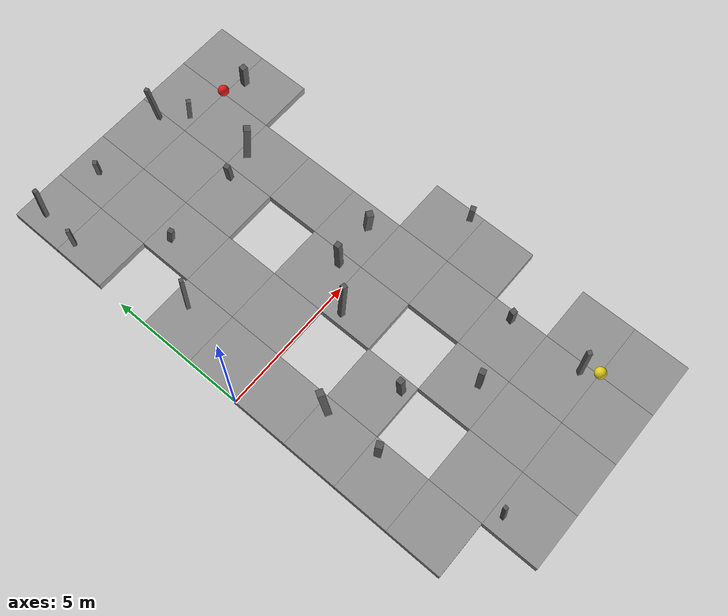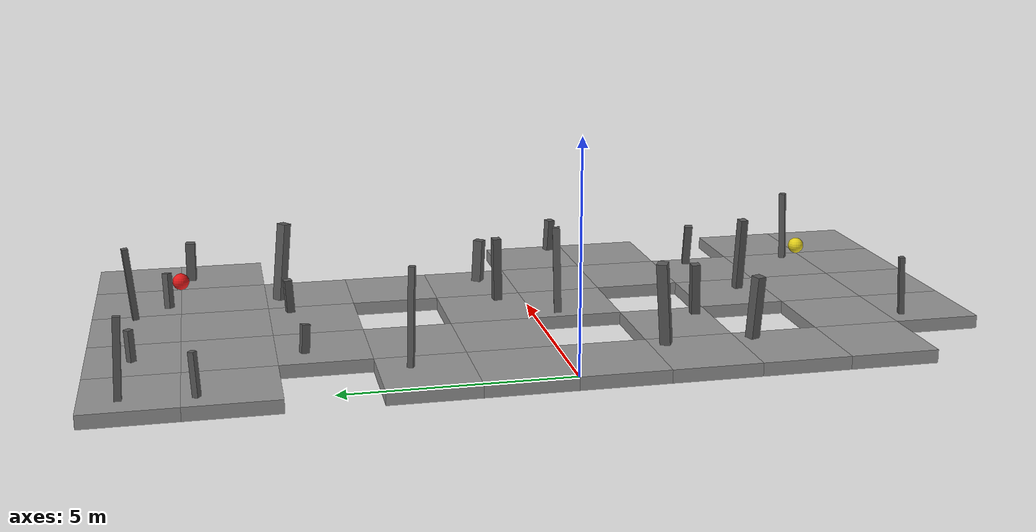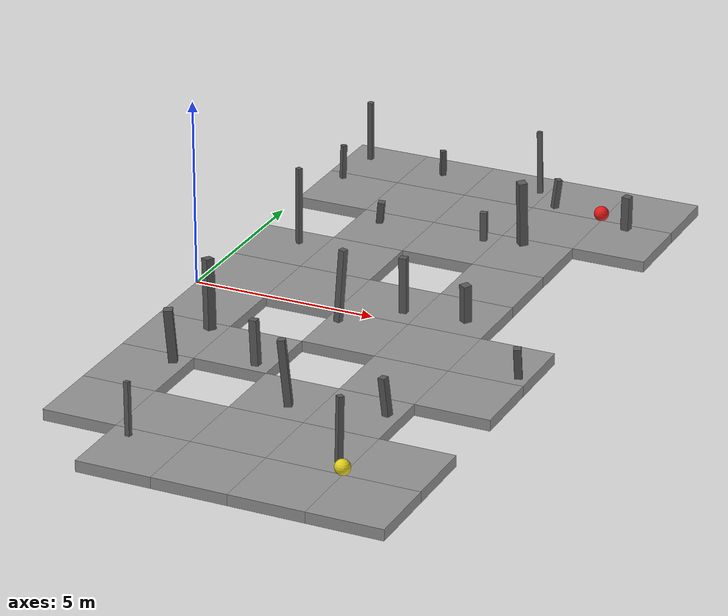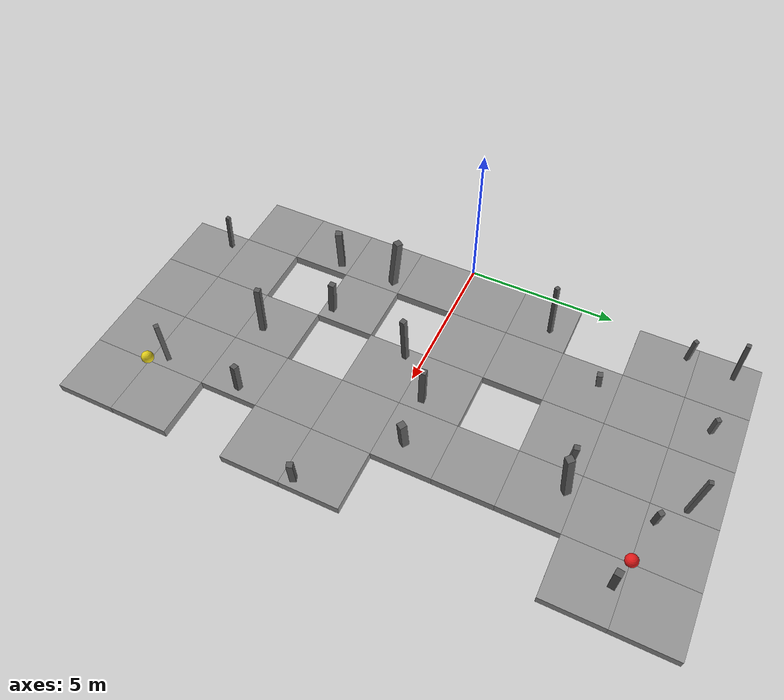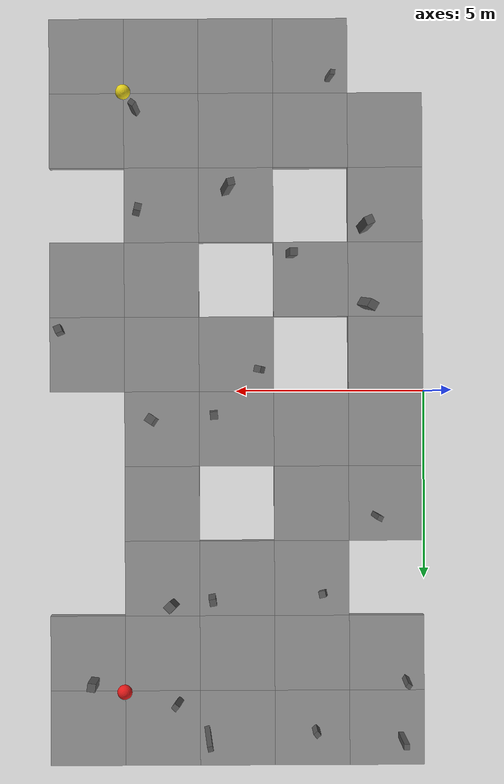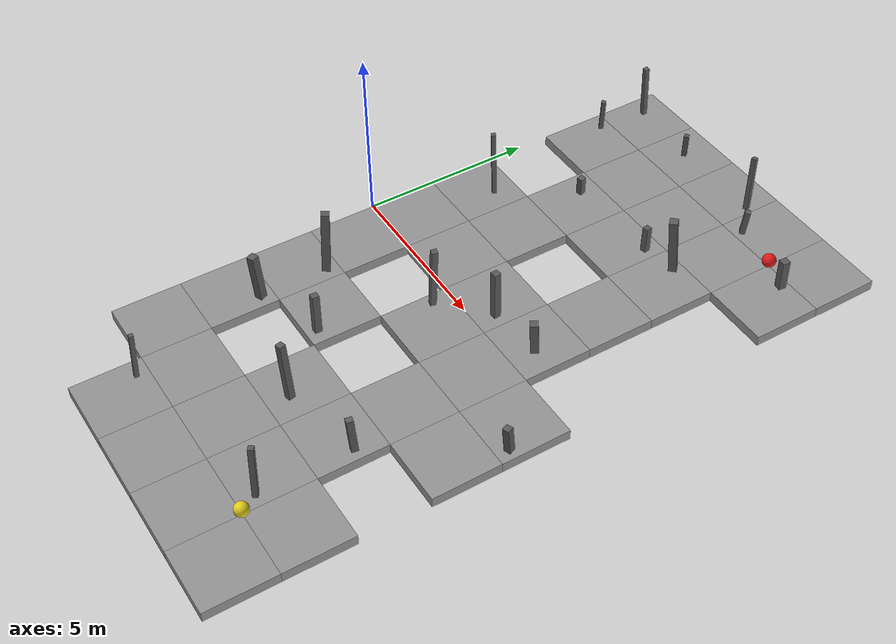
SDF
<sdf version="1.6">
 <world name="obstacle_course">
  <model name="obstacle_terrain">
   <static>true</static>
   <link name="tile_5_1">
    <pose>1.000 -7.000 -0.150 0 0 0</pose>
    <collision name="col">
     <geometry><box><size>2.00 2.00 0.30</size></box></geometry>
     <surface><friction><ode><mu>1.0</mu><mu2>1.0</mu2></ode></friction></surface>
    </collision>
    <visual name="vis">
     <geometry><box><size>2.00 2.00 0.30</size></box></geometry>
     <material>
      <ambient>0.58 0.58 0.58 1</ambient>
      <diffuse>0.58 0.58 0.58 1</diffuse>
      <specular>0 0 0 1</specular>
     </material>
    </visual>
   </link>
   <link name="tile_5_2">
    <pose>1.000 -5.000 -0.150 0 0 0</pose>
    <collision name="col">
     <geometry><box><size>2.00 2.00 0.30</size></box></geometry>
     <surface><friction><ode><mu>1.0</mu><mu2>1.0</mu2></ode></friction></surface>
    </collision>
    <visual name="vis">
     <geometry><box><size>2.00 2.00 0.30</size></box></geometry>
     <material>
      <ambient>0.58 0.58 0.58 1</ambient>
      <diffuse>0.58 0.58 0.58 1</diffuse>
      <specular>0 0 0 1</specular>
     </material>
    </visual>
   </link>
   <link name="tile_5_3">
    <pose>1.000 -3.000 -0.150 0 0 0</pose>
    <collision name="col">
     <geometry><box><size>2.00 2.00 0.30</size></box></geometry>
     <surface><friction><ode><mu>1.0</mu><mu2>1.0</mu2></ode></friction></surface>
    </collision>
    <visual name="vis">
     <geometry><box><size>2.00 2.00 0.30</size></box></geometry>
     <material>
      <ambient>0.58 0.58 0.58 1</ambient>
      <diffuse>0.58 0.58 0.58 1</diffuse>
      <specular>0 0 0 1</specular>
     </material>
    </visual>
   </link>
   <link name="tile_5_4">
    <pose>1.000 -1.000 -0.150 0 0 0</pose>
    <collision name="col">
     <geometry><box><size>2.00 2.00 0.30</size></box></geometry>
     <surface><friction><ode><mu>1.0</mu><mu2>1.0</mu2></ode></friction></surface>
    </collision>
    <visual name="vis">
     <geometry><box><size>2.00 2.00 0.30</size></box></geometry>
     <material>
      <ambient>0.58 0.58 0.58 1</ambient>
      <diffuse>0.58 0.58 0.58 1</diffuse>
      <specular>0 0 0 1</specular>
     </material>
    </visual>
   </link>
   <link name="tile_5_5">
    <pose>1.000 1.000 -0.150 0 0 0</pose>
    <collision name="col">
     <geometry><box><size>2.00 2.00 0.30</size></box></geometry>
     <surface><friction><ode><mu>1.0</mu><mu2>1.0</mu2></ode></friction></surface>
    </collision>
    <visual name="vis">
     <geometry><box><size>2.00 2.00 0.30</size></box></geometry>
     <material>
      <ambient>0.58 0.58 0.58 1</ambient>
      <diffuse>0.58 0.58 0.58 1</diffuse>
      <specular>0 0 0 1</specular>
     </material>
    </visual>
   </link>
   <link name="tile_5_6">
    <pose>1.000 3.000 -0.150 0 0 0</pose>
    <collision name="col">
     <geometry><box><size>2.00 2.00 0.30</size></box></geometry>
     <surface><friction><ode><mu>1.0</mu><mu2>1.0</mu2></ode></friction></surface>
    </collision>
    <visual name="vis">
     <geometry><box><size>2.00 2.00 0.30</size></box></geometry>
     <material>
      <ambient>0.58 0.58 0.58 1</ambient>
      <diffuse>0.58 0.58 0.58 1</diffuse>
      <specular>0 0 0 1</specular>
     </material>
    </visual>
   </link>
   <link name="tile_5_8">
    <pose>1.000 7.000 -0.150 0 0 0</pose>
    <collision name="col">
     <geometry><box><size>2.00 2.00 0.30</size></box></geometry>
     <surface><friction><ode><mu>1.0</mu><mu2>1.0</mu2></ode></friction></surface>
    </collision>
    <visual name="vis">
     <geometry><box><size>2.00 2.00 0.30</size></box></geometry>
     <material>
      <ambient>0.58 0.58 0.58 1</ambient>
      <diffuse>0.58 0.58 0.58 1</diffuse>
      <specular>0 0 0 1</specular>
     </material>
    </visual>
   </link>
   <link name="tile_5_9">
    <pose>1.000 9.000 -0.150 0 0 0</pose>
    <collision name="col">
     <geometry><box><size>2.00 2.00 0.30</size></box></geometry>
     <surface><friction><ode><mu>1.0</mu><mu2>1.0</mu2></ode></friction></surface>
    </collision>
    <visual name="vis">
     <geometry><box><size>2.00 2.00 0.30</size></box></geometry>
     <material>
      <ambient>0.58 0.58 0.58 1</ambient>
      <diffuse>0.58 0.58 0.58 1</diffuse>
      <specular>0 0 0 1</specular>
     </material>
    </visual>
   </link>
   <link name="tile_6_0">
    <pose>3.000 -9.000 -0.150 0 0 0</pose>
    <collision name="col">
     <geometry><box><size>2.00 2.00 0.30</size></box></geometry>
     <surface><friction><ode><mu>1.0</mu><mu2>1.0</mu2></ode></friction></surface>
    </collision>
    <visual name="vis">
     <geometry><box><size>2.00 2.00 0.30</size></box></geometry>
     <material>
      <ambient>0.58 0.58 0.58 1</ambient>
      <diffuse>0.58 0.58 0.58 1</diffuse>
      <specular>0 0 0 1</specular>
     </material>
    </visual>
   </link>
   <link name="tile_6_1">
    <pose>3.000 -7.000 -0.150 0 0 0</pose>
    <collision name="col">
     <geometry><box><size>2.00 2.00 0.30</size></box></geometry>
     <surface><friction><ode><mu>1.0</mu><mu2>1.0</mu2></ode></friction></surface>
    </collision>
    <visual name="vis">
     <geometry><box><size>2.00 2.00 0.30</size></box></geometry>
     <material>
      <ambient>0.58 0.58 0.58 1</ambient>
      <diffuse>0.58 0.58 0.58 1</diffuse>
      <specular>0 0 0 1</specular>
     </material>
    </visual>
   </link>
   <link name="tile_6_3">
    <pose>3.000 -3.000 -0.150 0 0 0</pose>
    <collision name="col">
     <geometry><box><size>2.00 2.00 0.30</size></box></geometry>
     <surface><friction><ode><mu>1.0</mu><mu2>1.0</mu2></ode></friction></surface>
    </collision>
    <visual name="vis">
     <geometry><box><size>2.00 2.00 0.30</size></box></geometry>
     <material>
      <ambient>0.58 0.58 0.58 1</ambient>
      <diffuse>0.58 0.58 0.58 1</diffuse>
      <specular>0 0 0 1</specular>
     </material>
    </visual>
   </link>
   <link name="tile_6_5">
    <pose>3.000 1.000 -0.150 0 0 0</pose>
    <collision name="col">
     <geometry><box><size>2.00 2.00 0.30</size></box></geometry>
     <surface><friction><ode><mu>1.0</mu><mu2>1.0</mu2></ode></friction></surface>
    </collision>
    <visual name="vis">
     <geometry><box><size>2.00 2.00 0.30</size></box></geometry>
     <material>
      <ambient>0.58 0.58 0.58 1</ambient>
      <diffuse>0.58 0.58 0.58 1</diffuse>
      <specular>0 0 0 1</specular>
     </material>
    </visual>
   </link>
   <link name="tile_6_6">
    <pose>3.000 3.000 -0.150 0 0 0</pose>
    <collision name="col">
     <geometry><box><size>2.00 2.00 0.30</size></box></geometry>
     <surface><friction><ode><mu>1.0</mu><mu2>1.0</mu2></ode></friction></surface>
    </collision>
    <visual name="vis">
     <geometry><box><size>2.00 2.00 0.30</size></box></geometry>
     <material>
      <ambient>0.58 0.58 0.58 1</ambient>
      <diffuse>0.58 0.58 0.58 1</diffuse>
      <specular>0 0 0 1</specular>
     </material>
    </visual>
   </link>
   <link name="tile_6_7">
    <pose>3.000 5.000 -0.150 0 0 0</pose>
    <collision name="col">
     <geometry><box><size>2.00 2.00 0.30</size></box></geometry>
     <surface><friction><ode><mu>1.0</mu><mu2>1.0</mu2></ode></friction></surface>
    </collision>
    <visual name="vis">
     <geometry><box><size>2.00 2.00 0.30</size></box></geometry>
     <material>
      <ambient>0.58 0.58 0.58 1</ambient>
      <diffuse>0.58 0.58 0.58 1</diffuse>
      <specular>0 0 0 1</specular>
     </material>
    </visual>
   </link>
   <link name="tile_6_8">
    <pose>3.000 7.000 -0.150 0 0 0</pose>
    <collision name="col">
     <geometry><box><size>2.00 2.00 0.30</size></box></geometry>
     <surface><friction><ode><mu>1.0</mu><mu2>1.0</mu2></ode></friction></surface>
    </collision>
    <visual name="vis">
     <geometry><box><size>2.00 2.00 0.30</size></box></geometry>
     <material>
      <ambient>0.58 0.58 0.58 1</ambient>
      <diffuse>0.58 0.58 0.58 1</diffuse>
      <specular>0 0 0 1</specular>
     </material>
    </visual>
   </link>
   <link name="tile_6_9">
    <pose>3.000 9.000 -0.150 0 0 0</pose>
    <collision name="col">
     <geometry><box><size>2.00 2.00 0.30</size></box></geometry>
     <surface><friction><ode><mu>1.0</mu><mu2>1.0</mu2></ode></friction></surface>
    </collision>
    <visual name="vis">
     <geometry><box><size>2.00 2.00 0.30</size></box></geometry>
     <material>
      <ambient>0.58 0.58 0.58 1</ambient>
      <diffuse>0.58 0.58 0.58 1</diffuse>
      <specular>0 0 0 1</specular>
     </material>
    </visual>
   </link>
   <link name="tile_7_0">
    <pose>5.000 -9.000 -0.150 0 0 0</pose>
    <collision name="col">
     <geometry><box><size>2.00 2.00 0.30</size></box></geometry>
     <surface><friction><ode><mu>1.0</mu><mu2>1.0</mu2></ode></friction></surface>
    </collision>
    <visual name="vis">
     <geometry><box><size>2.00 2.00 0.30</size></box></geometry>
     <material>
      <ambient>0.58 0.58 0.58 1</ambient>
      <diffuse>0.58 0.58 0.58 1</diffuse>
      <specular>0 0 0 1</specular>
     </material>
    </visual>
   </link>
   <link name="tile_7_1">
    <pose>5.000 -7.000 -0.150 0 0 0</pose>
    <collision name="col">
     <geometry><box><size>2.00 2.00 0.30</size></box></geometry>
     <surface><friction><ode><mu>1.0</mu><mu2>1.0</mu2></ode></friction></surface>
    </collision>
    <visual name="vis">
     <geometry><box><size>2.00 2.00 0.30</size></box></geometry>
     <material>
      <ambient>0.58 0.58 0.58 1</ambient>
      <diffuse>0.58 0.58 0.58 1</diffuse>
      <specular>0 0 0 1</specular>
     </material>
    </visual>
   </link>
   <link name="tile_7_2">
    <pose>5.000 -5.000 -0.150 0 0 0</pose>
    <collision name="col">
     <geometry><box><size>2.00 2.00 0.30</size></box></geometry>
     <surface><friction><ode><mu>1.0</mu><mu2>1.0</mu2></ode></friction></surface>
    </collision>
    <visual name="vis">
     <geometry><box><size>2.00 2.00 0.30</size></box></geometry>
     <material>
      <ambient>0.58 0.58 0.58 1</ambient>
      <diffuse>0.58 0.58 0.58 1</diffuse>
      <specular>0 0 0 1</specular>
     </material>
    </visual>
   </link>
   <link name="tile_7_4">
    <pose>5.000 -1.000 -0.150 0 0 0</pose>
    <collision name="col">
     <geometry><box><size>2.00 2.00 0.30</size></box></geometry>
     <surface><friction><ode><mu>1.0</mu><mu2>1.0</mu2></ode></friction></surface>
    </collision>
    <visual name="vis">
     <geometry><box><size>2.00 2.00 0.30</size></box></geometry>
     <material>
      <ambient>0.58 0.58 0.58 1</ambient>
      <diffuse>0.58 0.58 0.58 1</diffuse>
      <specular>0 0 0 1</specular>
     </material>
    </visual>
   </link>
   <link name="tile_7_5">
    <pose>5.000 1.000 -0.150 0 0 0</pose>
    <collision name="col">
     <geometry><box><size>2.00 2.00 0.30</size></box></geometry>
     <surface><friction><ode><mu>1.0</mu><mu2>1.0</mu2></ode></friction></surface>
    </collision>
    <visual name="vis">
     <geometry><box><size>2.00 2.00 0.30</size></box></geometry>
     <material>
      <ambient>0.58 0.58 0.58 1</ambient>
      <diffuse>0.58 0.58 0.58 1</diffuse>
      <specular>0 0 0 1</specular>
     </material>
    </visual>
   </link>
   <link name="tile_7_7">
    <pose>5.000 5.000 -0.150 0 0 0</pose>
    <collision name="col">
     <geometry><box><size>2.00 2.00 0.30</size></box></geometry>
     <surface><friction><ode><mu>1.0</mu><mu2>1.0</mu2></ode></friction></surface>
    </collision>
    <visual name="vis">
     <geometry><box><size>2.00 2.00 0.30</size></box></geometry>
     <material>
      <ambient>0.58 0.58 0.58 1</ambient>
      <diffuse>0.58 0.58 0.58 1</diffuse>
      <specular>0 0 0 1</specular>
     </material>
    </visual>
   </link>
   <link name="tile_7_8">
    <pose>5.000 7.000 -0.150 0 0 0</pose>
    <collision name="col">
     <geometry><box><size>2.00 2.00 0.30</size></box></geometry>
     <surface><friction><ode><mu>1.0</mu><mu2>1.0</mu2></ode></friction></surface>
    </collision>
    <visual name="vis">
     <geometry><box><size>2.00 2.00 0.30</size></box></geometry>
     <material>
      <ambient>0.58 0.58 0.58 1</ambient>
      <diffuse>0.58 0.58 0.58 1</diffuse>
      <specular>0 0 0 1</specular>
     </material>
    </visual>
   </link>
   <link name="tile_7_9">
    <pose>5.000 9.000 -0.150 0 0 0</pose>
    <collision name="col">
     <geometry><box><size>2.00 2.00 0.30</size></box></geometry>
     <surface><friction><ode><mu>1.0</mu><mu2>1.0</mu2></ode></friction></surface>
    </collision>
    <visual name="vis">
     <geometry><box><size>2.00 2.00 0.30</size></box></geometry>
     <material>
      <ambient>0.58 0.58 0.58 1</ambient>
      <diffuse>0.58 0.58 0.58 1</diffuse>
      <specular>0 0 0 1</specular>
     </material>
    </visual>
   </link>
   <link name="tile_8_0">
    <pose>7.000 -9.000 -0.150 0 0 0</pose>
    <collision name="col">
     <geometry><box><size>2.00 2.00 0.30</size></box></geometry>
     <surface><friction><ode><mu>1.0</mu><mu2>1.0</mu2></ode></friction></surface>
    </collision>
    <visual name="vis">
     <geometry><box><size>2.00 2.00 0.30</size></box></geometry>
     <material>
      <ambient>0.58 0.58 0.58 1</ambient>
      <diffuse>0.58 0.58 0.58 1</diffuse>
      <specular>0 0 0 1</specular>
     </material>
    </visual>
   </link>
   <link name="tile_8_1">
    <pose>7.000 -7.000 -0.150 0 0 0</pose>
    <collision name="col">
     <geometry><box><size>2.00 2.00 0.30</size></box></geometry>
     <surface><friction><ode><mu>1.0</mu><mu2>1.0</mu2></ode></friction></surface>
    </collision>
    <visual name="vis">
     <geometry><box><size>2.00 2.00 0.30</size></box></geometry>
     <material>
      <ambient>0.58 0.58 0.58 1</ambient>
      <diffuse>0.58 0.58 0.58 1</diffuse>
      <specular>0 0 0 1</specular>
     </material>
    </visual>
   </link>
   <link name="tile_8_2">
    <pose>7.000 -5.000 -0.150 0 0 0</pose>
    <collision name="col">
     <geometry><box><size>2.00 2.00 0.30</size></box></geometry>
     <surface><friction><ode><mu>1.0</mu><mu2>1.0</mu2></ode></friction></surface>
    </collision>
    <visual name="vis">
     <geometry><box><size>2.00 2.00 0.30</size></box></geometry>
     <material>
      <ambient>0.58 0.58 0.58 1</ambient>
      <diffuse>0.58 0.58 0.58 1</diffuse>
      <specular>0 0 0 1</specular>
     </material>
    </visual>
   </link>
   <link name="tile_8_3">
    <pose>7.000 -3.000 -0.150 0 0 0</pose>
    <collision name="col">
     <geometry><box><size>2.00 2.00 0.30</size></box></geometry>
     <surface><friction><ode><mu>1.0</mu><mu2>1.0</mu2></ode></friction></surface>
    </collision>
    <visual name="vis">
     <geometry><box><size>2.00 2.00 0.30</size></box></geometry>
     <material>
      <ambient>0.58 0.58 0.58 1</ambient>
      <diffuse>0.58 0.58 0.58 1</diffuse>
      <specular>0 0 0 1</specular>
     </material>
    </visual>
   </link>
   <link name="tile_8_4">
    <pose>7.000 -1.000 -0.150 0 0 0</pose>
    <collision name="col">
     <geometry><box><size>2.00 2.00 0.30</size></box></geometry>
     <surface><friction><ode><mu>1.0</mu><mu2>1.0</mu2></ode></friction></surface>
    </collision>
    <visual name="vis">
     <geometry><box><size>2.00 2.00 0.30</size></box></geometry>
     <material>
      <ambient>0.58 0.58 0.58 1</ambient>
      <diffuse>0.58 0.58 0.58 1</diffuse>
      <specular>0 0 0 1</specular>
     </material>
    </visual>
   </link>
   <link name="tile_8_5">
    <pose>7.000 1.000 -0.150 0 0 0</pose>
    <collision name="col">
     <geometry><box><size>2.00 2.00 0.30</size></box></geometry>
     <surface><friction><ode><mu>1.0</mu><mu2>1.0</mu2></ode></friction></surface>
    </collision>
    <visual name="vis">
     <geometry><box><size>2.00 2.00 0.30</size></box></geometry>
     <material>
      <ambient>0.58 0.58 0.58 1</ambient>
      <diffuse>0.58 0.58 0.58 1</diffuse>
      <specular>0 0 0 1</specular>
     </material>
    </visual>
   </link>
   <link name="tile_8_6">
    <pose>7.000 3.000 -0.150 0 0 0</pose>
    <collision name="col">
     <geometry><box><size>2.00 2.00 0.30</size></box></geometry>
     <surface><friction><ode><mu>1.0</mu><mu2>1.0</mu2></ode></friction></surface>
    </collision>
    <visual name="vis">
     <geometry><box><size>2.00 2.00 0.30</size></box></geometry>
     <material>
      <ambient>0.58 0.58 0.58 1</ambient>
      <diffuse>0.58 0.58 0.58 1</diffuse>
      <specular>0 0 0 1</specular>
     </material>
    </visual>
   </link>
   <link name="tile_8_7">
    <pose>7.000 5.000 -0.150 0 0 0</pose>
    <collision name="col">
     <geometry><box><size>2.00 2.00 0.30</size></box></geometry>
     <surface><friction><ode><mu>1.0</mu><mu2>1.0</mu2></ode></friction></surface>
    </collision>
    <visual name="vis">
     <geometry><box><size>2.00 2.00 0.30</size></box></geometry>
     <material>
      <ambient>0.58 0.58 0.58 1</ambient>
      <diffuse>0.58 0.58 0.58 1</diffuse>
      <specular>0 0 0 1</specular>
     </material>
    </visual>
   </link>
   <link name="tile_8_8">
    <pose>7.000 7.000 -0.150 0 0 0</pose>
    <collision name="col">
     <geometry><box><size>2.00 2.00 0.30</size></box></geometry>
     <surface><friction><ode><mu>1.0</mu><mu2>1.0</mu2></ode></friction></surface>
    </collision>
    <visual name="vis">
     <geometry><box><size>2.00 2.00 0.30</size></box></geometry>
     <material>
      <ambient>0.58 0.58 0.58 1</ambient>
      <diffuse>0.58 0.58 0.58 1</diffuse>
      <specular>0 0 0 1</specular>
     </material>
    </visual>
   </link>
   <link name="tile_8_9">
    <pose>7.000 9.000 -0.150 0 0 0</pose>
    <collision name="col">
     <geometry><box><size>2.00 2.00 0.30</size></box></geometry>
     <surface><friction><ode><mu>1.0</mu><mu2>1.0</mu2></ode></friction></surface>
    </collision>
    <visual name="vis">
     <geometry><box><size>2.00 2.00 0.30</size></box></geometry>
     <material>
      <ambient>0.58 0.58 0.58 1</ambient>
      <diffuse>0.58 0.58 0.58 1</diffuse>
      <specular>0 0 0 1</specular>
     </material>
    </visual>
   </link>
   <link name="tile_9_0">
    <pose>9.000 -9.000 -0.150 0 0 0</pose>
    <collision name="col">
     <geometry><box><size>2.00 2.00 0.30</size></box></geometry>
     <surface><friction><ode><mu>1.0</mu><mu2>1.0</mu2></ode></friction></surface>
    </collision>
    <visual name="vis">
     <geometry><box><size>2.00 2.00 0.30</size></box></geometry>
     <material>
      <ambient>0.58 0.58 0.58 1</ambient>
      <diffuse>0.58 0.58 0.58 1</diffuse>
      <specular>0 0 0 1</specular>
     </material>
    </visual>
   </link>
   <link name="tile_9_1">
    <pose>9.000 -7.000 -0.150 0 0 0</pose>
    <collision name="col">
     <geometry><box><size>2.00 2.00 0.30</size></box></geometry>
     <surface><friction><ode><mu>1.0</mu><mu2>1.0</mu2></ode></friction></surface>
    </collision>
    <visual name="vis">
     <geometry><box><size>2.00 2.00 0.30</size></box></geometry>
     <material>
      <ambient>0.58 0.58 0.58 1</ambient>
      <diffuse>0.58 0.58 0.58 1</diffuse>
      <specular>0 0 0 1</specular>
     </material>
    </visual>
   </link>
   <link name="tile_9_3">
    <pose>9.000 -3.000 -0.150 0 0 0</pose>
    <collision name="col">
     <geometry><box><size>2.00 2.00 0.30</size></box></geometry>
     <surface><friction><ode><mu>1.0</mu><mu2>1.0</mu2></ode></friction></surface>
    </collision>
    <visual name="vis">
     <geometry><box><size>2.00 2.00 0.30</size></box></geometry>
     <material>
      <ambient>0.58 0.58 0.58 1</ambient>
      <diffuse>0.58 0.58 0.58 1</diffuse>
      <specular>0 0 0 1</specular>
     </material>
    </visual>
   </link>
   <link name="tile_9_4">
    <pose>9.000 -1.000 -0.150 0 0 0</pose>
    <collision name="col">
     <geometry><box><size>2.00 2.00 0.30</size></box></geometry>
     <surface><friction><ode><mu>1.0</mu><mu2>1.0</mu2></ode></friction></surface>
    </collision>
    <visual name="vis">
     <geometry><box><size>2.00 2.00 0.30</size></box></geometry>
     <material>
      <ambient>0.58 0.58 0.58 1</ambient>
      <diffuse>0.58 0.58 0.58 1</diffuse>
      <specular>0 0 0 1</specular>
     </material>
    </visual>
   </link>
   <link name="tile_9_8">
    <pose>9.000 7.000 -0.150 0 0 0</pose>
    <collision name="col">
     <geometry><box><size>2.00 2.00 0.30</size></box></geometry>
     <surface><friction><ode><mu>1.0</mu><mu2>1.0</mu2></ode></friction></surface>
    </collision>
    <visual name="vis">
     <geometry><box><size>2.00 2.00 0.30</size></box></geometry>
     <material>
      <ambient>0.58 0.58 0.58 1</ambient>
      <diffuse>0.58 0.58 0.58 1</diffuse>
      <specular>0 0 0 1</specular>
     </material>
    </visual>
   </link>
   <link name="tile_9_9">
    <pose>9.000 9.000 -0.150 0 0 0</pose>
    <collision name="col">
     <geometry><box><size>2.00 2.00 0.30</size></box></geometry>
     <surface><friction><ode><mu>1.0</mu><mu2>1.0</mu2></ode></friction></surface>
    </collision>
    <visual name="vis">
     <geometry><box><size>2.00 2.00 0.30</size></box></geometry>
     <material>
      <ambient>0.58 0.58 0.58 1</ambient>
      <diffuse>0.58 0.58 0.58 1</diffuse>
      <specular>0 0 0 1</specular>
     </material>
    </visual>
   </link>
   <link name="spike_0">
    <pose>2.906 9.027 0.353 -0.0324 0.0177 0.7229</pose>
    <collision name="col"><geometry><box><size>0.149 0.149 0.706</size></box></geometry></collision>
    <visual name="vis">
     <geometry><box><size>0.149 0.149 0.706</size></box></geometry>
     <material>
      <ambient>0.35 0.35 0.35 1</ambient>
      <diffuse>0.35 0.35 0.35 1</diffuse>
      <specular>0 0 0 1</specular>
     </material>
    </visual>
   </link>
   <link name="spike_4">
    <pose>1.348 3.264 1.087 -0.0195 -0.0321 2.7070</pose>
    <collision name="col"><geometry><box><size>0.133 0.133 2.173</size></box></geometry></collision>
    <visual name="vis">
     <geometry><box><size>0.133 0.133 2.173</size></box></geometry>
     <material>
      <ambient>0.35 0.35 0.35 1</ambient>
      <diffuse>0.35 0.35 0.35 1</diffuse>
      <specular>0 0 0 1</specular>
     </material>
    </visual>
   </link>
   <link name="spike_7">
    <pose>5.648 5.530 0.391 -0.0573 -0.0198 0.1842</pose>
    <collision name="col"><geometry><box><size>0.183 0.183 0.783</size></box></geometry></collision>
    <visual name="vis">
     <geometry><box><size>0.183 0.183 0.783</size></box></geometry>
     <material>
      <ambient>0.35 0.35 0.35 1</ambient>
      <diffuse>0.35 0.35 0.35 1</diffuse>
      <specular>0 0 0 1</specular>
     </material>
    </visual>
   </link>
   <link name="spike_8">
    <pose>8.816 7.738 0.475 -0.0090 -0.0154 3.0075</pose>
    <collision name="col"><geometry><box><size>0.222 0.222 0.951</size></box></geometry></collision>
    <visual name="vis">
     <geometry><box><size>0.222 0.222 0.951</size></box></geometry>
     <material>
      <ambient>0.35 0.35 0.35 1</ambient>
      <diffuse>0.35 0.35 0.35 1</diffuse>
      <specular>0 0 0 1</specular>
     </material>
    </visual>
   </link>
   <link name="spike_9">
    <pose>5.753 9.085 0.861 -0.0407 0.0937 1.8195</pose>
    <collision name="col"><geometry><box><size>0.140 0.140 1.721</size></box></geometry></collision>
    <visual name="vis">
     <geometry><box><size>0.140 0.140 1.721</size></box></geometry>
     <material>
      <ambient>0.35 0.35 0.35 1</ambient>
      <diffuse>0.35 0.35 0.35 1</diffuse>
      <specular>0 0 0 1</specular>
     </material>
    </visual>
   </link>
   <link name="spike_11">
    <pose>9.700 -1.638 0.408 0.0350 -0.0530 0.3766</pose>
    <collision name="col"><geometry><box><size>0.197 0.197 0.816</size></box></geometry></collision>
    <visual name="vis">
     <geometry><box><size>0.197 0.197 0.816</size></box></geometry>
     <material>
      <ambient>0.35 0.35 0.35 1</ambient>
      <diffuse>0.35 0.35 0.35 1</diffuse>
      <specular>0 0 0 1</specular>
     </material>
    </visual>
   </link>
   <link name="spike_12">
    <pose>5.593 0.614 0.755 -0.0162 0.0167 1.6424</pose>
    <collision name="col"><geometry><box><size>0.201 0.201 1.511</size></box></geometry></collision>
    <visual name="vis">
     <geometry><box><size>0.201 0.201 1.511</size></box></geometry>
     <material>
      <ambient>0.35 0.35 0.35 1</ambient>
      <diffuse>0.35 0.35 0.35 1</diffuse>
      <specular>0 0 0 1</specular>
     </material>
    </visual>
   </link>
   <link name="spike_13">
    <pose>7.661 -7.450 0.859 -0.0208 0.0343 0.9425</pose>
    <collision name="col"><geometry><box><size>0.151 0.151 1.718</size></box></geometry></collision>
    <visual name="vis">
     <geometry><box><size>0.151 0.151 1.718</size></box></geometry>
     <material>
      <ambient>0.35 0.35 0.35 1</ambient>
      <diffuse>0.35 0.35 0.35 1</diffuse>
      <specular>0 0 0 1</specular>
     </material>
    </visual>
   </link>
   <link name="spike_14">
    <pose>2.721 5.383 0.312 0.0997 0.0992 0.2302</pose>
    <collision name="col"><geometry><box><size>0.180 0.180 0.623</size></box></geometry></collision>
    <visual name="vis">
     <geometry><box><size>0.180 0.180 0.623</size></box></geometry>
     <material>
      <ambient>0.35 0.35 0.35 1</ambient>
      <diffuse>0.35 0.35 0.35 1</diffuse>
      <specular>0 0 0 1</specular>
     </material>
    </visual>
   </link>
   <link name="spike_18">
    <pose>0.654 9.159 0.860 0.0268 -0.0472 1.5348</pose>
    <collision name="col"><geometry><box><size>0.146 0.146 1.720</size></box></geometry></collision>
    <visual name="vis">
     <geometry><box><size>0.146 0.146 1.720</size></box></geometry>
     <material>
      <ambient>0.35 0.35 0.35 1</ambient>
      <diffuse>0.35 0.35 0.35 1</diffuse>
      <specular>0 0 0 1</specular>
     </material>
    </visual>
   </link>
   <link name="spike_20">
    <pose>5.208 -5.362 0.880 -0.0145 -0.0981 0.2364</pose>
    <collision name="col"><geometry><box><size>0.192 0.192 1.760</size></box></geometry></collision>
    <visual name="vis">
     <geometry><box><size>0.192 0.192 1.760</size></box></geometry>
     <material>
      <ambient>0.35 0.35 0.35 1</ambient>
      <diffuse>0.35 0.35 0.35 1</diffuse>
      <specular>0 0 0 1</specular>
     </material>
    </visual>
   </link>
   <link name="spike_21">
    <pose>1.582 -4.386 0.714 0.0165 -0.0704 0.4004</pose>
    <collision name="col"><geometry><box><size>0.228 0.228 1.428</size></box></geometry></collision>
    <visual name="vis">
     <geometry><box><size>0.228 0.228 1.428</size></box></geometry>
     <material>
      <ambient>0.35 0.35 0.35 1</ambient>
      <diffuse>0.35 0.35 0.35 1</diffuse>
      <specular>0 0 0 1</specular>
     </material>
    </visual>
   </link>
   <link name="spike_22">
    <pose>6.709 5.606 0.927 0.0798 -0.0580 0.7839</pose>
    <collision name="col"><geometry><box><size>0.232 0.232 1.853</size></box></geometry></collision>
    <visual name="vis">
     <geometry><box><size>0.232 0.232 1.853</size></box></geometry>
     <material>
      <ambient>0.35 0.35 0.35 1</ambient>
      <diffuse>0.35 0.35 0.35 1</diffuse>
      <specular>0 0 0 1</specular>
     </material>
    </visual>
   </link>
   <link name="spike_23">
    <pose>4.396 -0.574 1.002 0.0241 -0.0691 2.9213</pose>
    <collision name="col"><geometry><box><size>0.173 0.173 2.003</size></box></geometry></collision>
    <visual name="vis">
     <geometry><box><size>0.173 0.173 2.003</size></box></geometry>
     <material>
      <ambient>0.35 0.35 0.35 1</ambient>
      <diffuse>0.35 0.35 0.35 1</diffuse>
      <specular>0 0 0 1</specular>
     </material>
    </visual>
   </link>
   <link name="spike_24">
    <pose>1.554 -2.276 0.939 -0.0950 0.0473 1.0436</pose>
    <collision name="col"><geometry><box><size>0.235 0.235 1.878</size></box></geometry></collision>
    <visual name="vis">
     <geometry><box><size>0.235 0.235 1.878</size></box></geometry>
     <material>
      <ambient>0.35 0.35 0.35 1</ambient>
      <diffuse>0.35 0.35 0.35 1</diffuse>
      <specular>0 0 0 1</specular>
     </material>
    </visual>
   </link>
   <link name="spike_27">
    <pose>6.586 8.276 0.414 0.0729 0.0934 0.8769</pose>
    <collision name="col"><geometry><box><size>0.163 0.163 0.828</size></box></geometry></collision>
    <visual name="vis">
     <geometry><box><size>0.163 0.163 0.828</size></box></geometry>
     <material>
      <ambient>0.35 0.35 0.35 1</ambient>
      <diffuse>0.35 0.35 0.35 1</diffuse>
      <specular>0 0 0 1</specular>
     </material>
    </visual>
   </link>
   <link name="spike_29">
    <pose>0.511 7.703 0.476 -0.0131 0.0457 0.9854</pose>
    <collision name="col"><geometry><box><size>0.134 0.134 0.951</size></box></geometry></collision>
    <visual name="vis">
     <geometry><box><size>0.134 0.134 0.951</size></box></geometry>
     <material>
      <ambient>0.35 0.35 0.35 1</ambient>
      <diffuse>0.35 0.35 0.35 1</diffuse>
      <specular>0 0 0 1</specular>
     </material>
    </visual>
   </link>
   <link name="spike_32">
    <pose>7.250 0.742 0.517 0.0440 -0.0399 0.9716</pose>
    <collision name="col"><geometry><box><size>0.230 0.230 1.034</size></box></geometry></collision>
    <visual name="vis">
     <geometry><box><size>0.230 0.230 1.034</size></box></geometry>
     <material>
      <ambient>0.35 0.35 0.35 1</ambient>
      <diffuse>0.35 0.35 0.35 1</diffuse>
      <specular>0 0 0 1</specular>
     </material>
    </visual>
   </link>
   <link name="spike_34">
    <pose>7.612 -4.824 0.506 -0.0999 -0.0426 1.3505</pose>
    <collision name="col"><geometry><box><size>0.191 0.191 1.012</size></box></geometry></collision>
    <visual name="vis">
     <geometry><box><size>0.191 0.191 1.012</size></box></geometry>
     <material>
      <ambient>0.35 0.35 0.35 1</ambient>
      <diffuse>0.35 0.35 0.35 1</diffuse>
      <specular>0 0 0 1</specular>
     </material>
    </visual>
   </link>
   <link name="spike_38">
    <pose>3.532 -3.649 0.602 -0.0611 0.0393 1.5531</pose>
    <collision name="col"><geometry><box><size>0.202 0.202 1.205</size></box></geometry></collision>
    <visual name="vis">
     <geometry><box><size>0.202 0.202 1.205</size></box></geometry>
     <material>
      <ambient>0.35 0.35 0.35 1</ambient>
      <diffuse>0.35 0.35 0.35 1</diffuse>
      <specular>0 0 0 1</specular>
     </material>
    </visual>
   </link>
   <link name="spike_40">
    <pose>2.507 -8.304 0.690 -0.0502 0.0697 1.4340</pose>
    <collision name="col"><geometry><box><size>0.127 0.127 1.381</size></box></geometry></collision>
    <visual name="vis">
     <geometry><box><size>0.127 0.127 1.381</size></box></geometry>
     <material>
      <ambient>0.35 0.35 0.35 1</ambient>
      <diffuse>0.35 0.35 0.35 1</diffuse>
      <specular>0 0 0 1</specular>
     </material>
    </visual>
   </link>
  </model>
  <model name="red_ball">
   <static>false</static>
   <pose>8.000 8.000 0.200 0 0 0</pose>
   <link name="link">
    <inertial>
     <mass>0.5</mass>
     <inertia><ixx>0.0080</ixx><ixy>0</ixy><ixz>0</ixz><iyy>0.0080</iyy><iyz>0</iyz><izz>0.0080</izz></inertia>
    </inertial>
    <collision name="collision">
     <geometry><sphere><radius>0.2</radius></sphere></geometry>
     <surface>
      <friction><ode><mu>0.6</mu><mu2>0.6</mu2></ode></friction>
      <bounce><restitution_coefficient>0.5</restitution_coefficient><threshold>0</threshold></bounce>
     </surface>
    </collision>
    <visual name="visual">
     <geometry><sphere><radius>0.2</radius></sphere></geometry>
     <material>
      <ambient>0.9 0.1 0.1 1</ambient>
      <diffuse>0.9 0.1 0.1 1</diffuse>
      <specular>0.5 0.4 0.3 50</specular>
     </material>
    </visual>
   </link>
  </model>
  <model name="yellow_ball">
   <static>false</static>
   <pose>8.000 -8.000 0.200 0 0 0</pose>
   <link name="link">
    <inertial>
     <mass>0.5</mass>
     <inertia><ixx>0.0080</ixx><ixy>0</ixy><ixz>0</ixz><iyy>0.0080</iyy><iyz>0</iyz><izz>0.0080</izz></inertia>
    </inertial>
    <collision name="collision">
     <geometry><sphere><radius>0.2</radius></sphere></geometry>
     <surface>
      <friction><ode><mu>0.6</mu><mu2>0.6</mu2></ode></friction>
      <bounce><restitution_coefficient>0.5</restitution_coefficient><threshold>0</threshold></bounce>
     </surface>
    </collision>
    <visual name="visual">
     <geometry><sphere><radius>0.2</radius></sphere></geometry>
     <material>
      <ambient>0.9 0.82 0.1 1</ambient>
      <diffuse>0.9 0.82 0.1 1</diffuse>
      <specular>0.5 0.4 0.3 50</specular>
     </material>
    </visual>
   </link>
  </model>
 </world>
</sdf>
